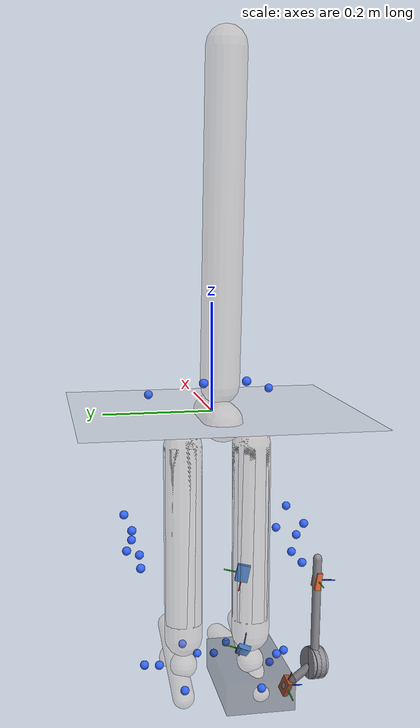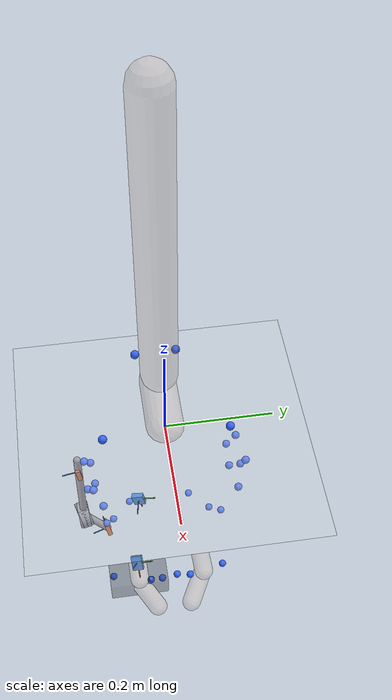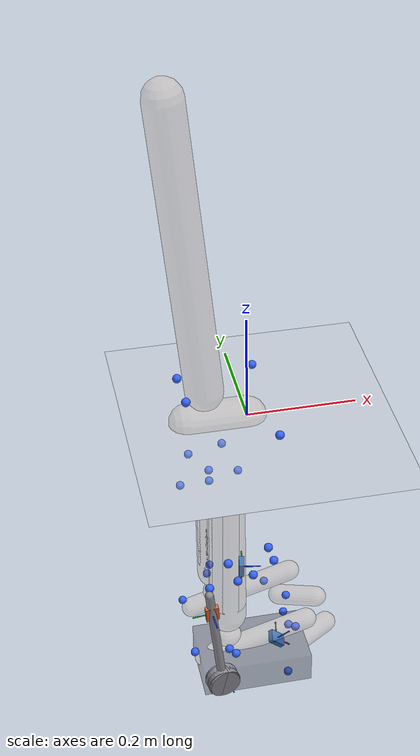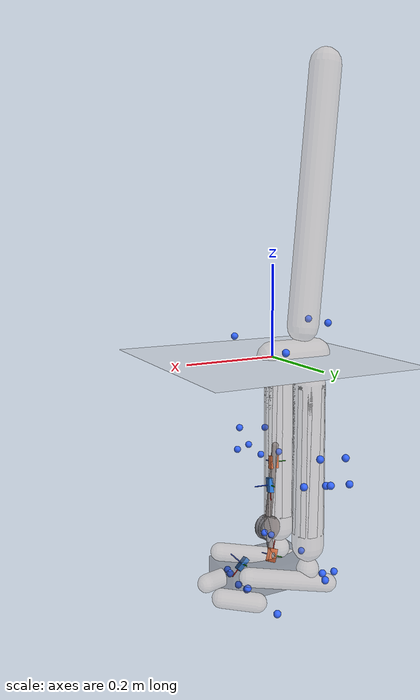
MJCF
<mujoco model="AB07">
  <compiler angle="radian" autolimits="true"/>
  <option timestep="0.005" gravity="0 0 -9.81"><flag contact="disable"/></option>
  <visual><global offwidth="1600" offheight="1200"/>
    <headlight ambient="0.55 0.55 0.55" diffuse="0.6 0.6 0.6"/></visual>
  <default><joint limited="false" damping="0"/><geom contype="0" conaffinity="0"/></default>
  <asset>
    <texture name="grid" type="2d" builtin="checker" rgb1="0.75 0.77 0.8" rgb2="0.85 0.87 0.9" width="512" height="512"/>
    <material name="grid" texture="grid" texrepeat="2 2" texuniform="true"/>
    <material name="skin" rgba="0.85 0.72 0.62 0.28"/>
  </asset>
  <worldbody>
    <light pos="0 0 4" dir="0 0 -1"/>
    <geom name="floor" type="plane" size="0 0 0.05" material="grid"/>
    <body name="pelvis" pos="0 0 0" quat="1 0 0 0">
      <joint name="pelvis_tx" type="slide" axis="1 0 0"/>
      <joint name="pelvis_ty" type="slide" axis="0 0 1"/>
      <joint name="pelvis_tz" type="slide" axis="0 -1 0"/>
      <joint name="pelvis_tilt" type="hinge" axis="0 -1 0"/>
      <joint name="pelvis_list" type="hinge" axis="1 0 0"/>
      <joint name="pelvis_rotation" type="hinge" axis="0 0 1"/>
      <inertial pos="-0.053515062 0 0" mass="9.21415" diaginertia="0.092141474 0.092141474 0.092141474"/>
      <geom type="capsule" fromto="0 0 0 -0.10703012 0 0" size="0.035" material="skin" mass="0"/>
      <site name="m_R_ASIS" pos="0.033664071 -0.11566936 0.033504694" size="0.008" rgba="0.2 0.4 1 1" group="2"/>
      <site name="m_L_ASIS" pos="0.03357233 0.11314141 0.027907197" size="0.008" rgba="0.2 0.4 1 1" group="2"/>
      <site name="m_L_PSIS" pos="-0.11820942 0.036312548 0.07132224" size="0.008" rgba="0.2 0.4 1 1" group="2"/>
      <site name="m_R_PSIS" pos="-0.11560514 -0.03937239 0.072488913" size="0.008" rgba="0.2 0.4 1 1" group="2"/>
      <body name="femur_r" pos="-0.053515062 -0.063203787 -0.050033177" quat="1 0 0 0">
        <joint name="hip_flexion_r" type="hinge" axis="0 -1 0"/>
        <joint name="hip_adduction_r" type="hinge" axis="1 0 0"/>
        <joint name="hip_rotation_r" type="hinge" axis="0 0 1"/>
        <inertial pos="0 0 -0.16663522" mass="7.27728" diaginertia="0.072772752 0.072772752 0.072772752"/>
        <geom type="capsule" fromto="0 0 0 0 0 -0.33327045" size="0.035" material="skin" mass="0"/>
        <site name="m_R_Thigh_Upper" pos="0.060391365 -0.082338532 -0.14067516" size="0.008" rgba="0.2 0.4 1 1" group="2"/>
        <site name="m_R_Thigh_Front" pos="0.07404481 -0.066461354 -0.18715813" size="0.008" rgba="0.2 0.4 1 1" group="2"/>
        <site name="m_R_Thigh_Rear" pos="0.029860654 -0.09457525 -0.18903628" size="0.008" rgba="0.2 0.4 1 1" group="2"/>
        <site name="m_R_Knee_Lat" pos="0.00231249 -0.065433357 -0.40603589" size="0.008" rgba="0.2 0.4 1 1" group="2"/>
        <body name="tibia_r" pos="0 0 0" quat="1 0 0 0">
<geom name="gt_shank_axis_x" type="capsule" size="0.0012" fromto="0.02940 0.00870 -0.25790 0.03022 0.01565 -0.29219" rgba="1 0.1 0.1 1" contype="0" conaffinity="0" mass="0"/>
<geom name="gt_shank_axis_y" type="capsule" size="0.0012" fromto="0.02940 0.00870 -0.25790 0.03591 0.04237 -0.25092" rgba="0.1 0.8 0.1 1" contype="0" conaffinity="0" mass="0"/>
<geom name="gt_shank_axis_z" type="capsule" size="0.0012" fromto="0.02940 0.00870 -0.25790 0.06378 0.00216 -0.25840" rgba="0.1 0.3 1 1" contype="0" conaffinity="0" mass="0"/>
<geom name="exo_shank_axis_x" type="capsule" size="0.0012" fromto="-0.04979 -0.11260 -0.24985 -0.05209 -0.11721 -0.21523" rgba="1 0.1 0.1 1" contype="0" conaffinity="0" mass="0"/>
<geom name="exo_shank_axis_y" type="capsule" size="0.0012" fromto="-0.04979 -0.11260 -0.24985 -0.08462 -0.11483 -0.25246" rgba="0.1 0.8 0.1 1" contype="0" conaffinity="0" mass="0"/>
<geom name="exo_shank_axis_z" type="capsule" size="0.0012" fromto="-0.04979 -0.11260 -0.24985 -0.04723 -0.14722 -0.25429" rgba="0.1 0.3 1 1" contype="0" conaffinity="0" mass="0"/>
<geom name="encoder_shank" type="cylinder" size="0.03 0.012" fromto="-0.03239 -0.12724 -0.41819 -0.03461 -0.10336 -0.41721" rgba="0.55 0.55 0.58 1" contype="0" conaffinity="0" mass="0"/>
<geom name="strut_shank" type="capsule" size="0.008" fromto="-0.03350 -0.11530 -0.41770 -0.05386 -0.11192 -0.20789" rgba="0.55 0.55 0.58 1" contype="0" conaffinity="0" mass="0"/>
          <joint name="knee_r_translation1" type="slide" axis="1 0 0"/>
          <joint name="knee_r_translation2" type="slide" axis="0 0 1"/>
          <joint name="knee_angle_r" type="hinge" axis="0 -1 0"/>
          <inertial pos="0 0 -0.18137732" mass="2.90069" diaginertia="0.029006921 0.029006921 0.029006921"/>
          <geom type="capsule" fromto="0 0 0 0 0 -0.36275464" size="0.035" material="skin" mass="0"/>
          <site name="m_R_Shank_Upper" pos="-0.01556581 -0.095765854 -0.15307496" size="0.008" rgba="0.2 0.4 1 1" group="2"/>
          <site name="m_R_Shank_Front" pos="0.0047970893 -0.079035616 -0.21298879" size="0.008" rgba="0.2 0.4 1 1" group="2"/>
          <site name="m_R_Shank_Rear" pos="-0.0482926 -0.084404025 -0.21579566" size="0.008" rgba="0.2 0.4 1 1" group="2"/>
          <site name="m_R_Ankle_Lat" pos="-0.007256546 -0.049275476 -0.40762694" size="0.008" rgba="0.2 0.4 1 1" group="2"/>
          <site name="gt_shank_imu" type="box" size="0.016 0.012 0.005" pos="0.0294 0.0087 -0.2579" quat="0.70201303 0.13758557 0.69873257 0.0045511802" rgba="0.16 0.47 0.84 1" group="1"/>
          <site name="exo_shank_imu" type="box" size="0.016 0.012 0.005" pos="-0.049788 -0.112596 -0.24985" quat="-0.43116982 -0.53034032 0.53120958 -0.5006477" rgba="0.92 0.41 0.20 1" group="1"/>
          <body name="talus_r" pos="0 0 -0.41774102" quat="1 0 0 0">
            <joint name="ankle_angle_r" type="hinge" axis="-0.10501355 -0.97912632 -0.17402245"/>
            <inertial pos="0 0 0" mass="0.0782385" diaginertia="0.00078238493 0.00078238493 0.00078238493"/>
            <geom type="sphere" size="0.025" material="skin" mass="0"/>
            <body name="calcn_r" pos="-0.047379603 -0.0076942066 -0.040754036" quat="1 0 0 0">
<geom name="gt_foot_axis_x" type="capsule" size="0.0012" fromto="0.14050 0.00040 0.01740 0.16650 0.00303 -0.00588" rgba="1 0.1 0.1 1" contype="0" conaffinity="0" mass="0"/>
<geom name="gt_foot_axis_y" type="capsule" size="0.0012" fromto="0.14050 0.00040 0.01740 0.14618 0.03343 0.02748" rgba="0.1 0.8 0.1 1" contype="0" conaffinity="0" mass="0"/>
<geom name="gt_foot_axis_z" type="capsule" size="0.0012" fromto="0.14050 0.00040 0.01740 0.16323 -0.01087 0.04152" rgba="0.1 0.3 1 1" contype="0" conaffinity="0" mass="0"/>
<geom name="exo_foot_axis_x" type="capsule" size="0.0012" fromto="0.02945 -0.05752 -0.00936 0.01648 -0.06542 0.02217" rgba="1 0.1 0.1 1" contype="0" conaffinity="0" mass="0"/>
<geom name="exo_foot_axis_y" type="capsule" size="0.0012" fromto="0.02945 -0.05752 -0.00936 -0.00198 -0.06311 -0.02369" rgba="0.1 0.8 0.1 1" contype="0" conaffinity="0" mass="0"/>
<geom name="exo_foot_axis_z" type="capsule" size="0.0012" fromto="0.02945 -0.05752 -0.00936 0.03773 -0.09115 -0.01439" rgba="0.1 0.3 1 1" contype="0" conaffinity="0" mass="0"/>
<geom name="encoder_foot" type="cylinder" size="0.03 0.012" fromto="0.01732 -0.11906 0.03979 0.01048 -0.09614 0.04181" rgba="0.55 0.55 0.58 1" contype="0" conaffinity="0" mass="0"/>
<geom name="strut_foot" type="capsule" size="0.008" fromto="0.01390 -0.10760 0.04080 0.02945 -0.05752 -0.00936" rgba="0.55 0.55 0.58 1" contype="0" conaffinity="0" mass="0"/>
<geom name="shoe" type="box" pos="0.09128 -0.00048 -0.00784" size="0.10337 0.06439 0.03000" rgba="0.15 0.15 0.18 0.35" contype="0" conaffinity="0" mass="0"/>
              <joint name="subtalar_angle_r" type="hinge" axis="0.78717961 0.12094949 0.60474746"/>
              <inertial pos="0.099121153 0 0.029736346" mass="0.977981" diaginertia="0.0097798117 0.0097798117 0.0097798117"/>
              <geom type="capsule" fromto="0 0 0 0.19824231 0 0.059472692" size="0.02" material="skin" mass="0"/>
              <site name="m_R_Heel" pos="-0.019088805 0.00081645212 0.014598644" size="0.008" rgba="0.2 0.4 1 1" group="2"/>
              <site name="m_R_Toe_Lat" pos="0.15084954 -0.056171535 -0.017837498" size="0.008" rgba="0.2 0.4 1 1" group="2"/>
              <site name="m_R_Toe_Med" pos="0.17681135 0.052611145 -0.0013907331" size="0.008" rgba="0.2 0.4 1 1" group="2"/>
              <site name="m_R_Toe_Tip" pos="0.18464869 0.026353316 0.015702997" size="0.008" rgba="0.2 0.4 1 1" group="2"/>
              <site name="gt_foot_imu" type="box" size="0.016 0.012 0.005" pos="0.1405 0.0004 0.0174" quat="0.91865114 0.16605812 0.35768895 -0.02373618" rgba="0.16 0.47 0.84 1" group="1"/>
              <site name="exo_foot_imu" type="box" size="0.016 0.012 0.005" pos="0.029452 -0.057516 -0.009358" quat="0.28544955 0.48294344 -0.58191422 0.58877842" rgba="0.92 0.41 0.20 1" group="1"/>
              <body name="toes_r" pos="0.17722862 -0.0010705085 -0.0019824231" quat="1 0 0 0">
                <joint name="mtp_angle_r" type="hinge" axis="-0.5809544 -0.81393611 0"/>
                <inertial pos="0.034295919 0.017346202 0.0059472692" mass="0.169465" diaginertia="0.0016946458 0.0016946458 0.0016946458"/>
                <geom type="capsule" fromto="0 0 0 0.068591838 0.034692404 0.011894538" size="0.02" material="skin" mass="0"/>
              </body>
            </body>
          </body>
        </body>
      </body>
      <body name="femur_l" pos="-0.053515062 0.063203787 -0.050033177" quat="1 0 0 0">
        <joint name="hip_flexion_l" type="hinge" axis="0 -1 0"/>
        <joint name="hip_adduction_l" type="hinge" axis="-1 0 0"/>
        <joint name="hip_rotation_l" type="hinge" axis="0 0 -1"/>
        <inertial pos="0 0 -0.16663522" mass="7.27728" diaginertia="0.072772752 0.072772752 0.072772752"/>
        <geom type="capsule" fromto="0 0 0 0 0 -0.33327045" size="0.035" material="skin" mass="0"/>
        <site name="m_L_Thigh_Upper" pos="0.037526398 0.10335059 -0.13475185" size="0.008" rgba="0.2 0.4 1 1" group="2"/>
        <site name="m_L_Thigh_Front" pos="0.06549258 0.087090839 -0.19284156" size="0.008" rgba="0.2 0.4 1 1" group="2"/>
        <site name="m_L_Thigh_Rear" pos="0.010575248 0.10181906 -0.19471217" size="0.008" rgba="0.2 0.4 1 1" group="2"/>
        <site name="m_L_Knee_Lat" pos="0.0018154116 0.07273436 -0.41281724" size="0.008" rgba="0.2 0.4 1 1" group="2"/>
        <body name="tibia_l" pos="0 0 0" quat="1 0 0 0">
          <joint name="knee_l_translation1" type="slide" axis="1 0 0"/>
          <joint name="knee_l_translation2" type="slide" axis="0 0 1"/>
          <joint name="knee_angle_l" type="hinge" axis="0 -1 0"/>
          <inertial pos="0 0 -0.18137732" mass="2.90069" diaginertia="0.029006921 0.029006921 0.029006921"/>
          <geom type="capsule" fromto="0 0 0 0 0 -0.36275464" size="0.035" material="skin" mass="0"/>
          <site name="m_L_Shank_Upper" pos="-0.029726724 0.095891105 -0.14423464" size="0.008" rgba="0.2 0.4 1 1" group="2"/>
          <site name="m_L_Shank_Front" pos="0.0066113286 0.079017243 -0.20261621" size="0.008" rgba="0.2 0.4 1 1" group="2"/>
          <site name="m_L_Shank_Rear" pos="-0.049726018 0.083138435 -0.20751362" size="0.008" rgba="0.2 0.4 1 1" group="2"/>
          <site name="m_L_Ankle_Lat" pos="-0.0084781213 0.046352266 -0.41108519" size="0.008" rgba="0.2 0.4 1 1" group="2"/>
          <body name="talus_l" pos="0 0 -0.41774102" quat="1 0 0 0">
            <joint name="ankle_angle_l" type="hinge" axis="0.10501355 -0.97912632 0.17402245"/>
            <inertial pos="0 0 0" mass="0.0782385" diaginertia="0.00078238493 0.00078238493 0.00078238493"/>
            <geom type="sphere" size="0.025" material="skin" mass="0"/>
            <body name="calcn_l" pos="-0.047379603 0.0076942066 -0.040754036" quat="1 0 0 0">
              <joint name="subtalar_angle_l" type="hinge" axis="-0.78717961 0.12094949 -0.60474746"/>
              <inertial pos="0.099121153 0 0.029736346" mass="0.977981" diaginertia="0.0097798117 0.0097798117 0.0097798117"/>
              <geom type="capsule" fromto="0 0 0 0.19824231 0 0.059472692" size="0.02" material="skin" mass="0"/>
              <site name="m_L_Heel" pos="-0.017802654 3.7905757e-05 0.021969163" size="0.008" rgba="0.2 0.4 1 1" group="2"/>
              <site name="m_L_Toe_Lat" pos="0.1584127 0.052329296 -0.0075494346" size="0.008" rgba="0.2 0.4 1 1" group="2"/>
              <site name="m_L_Toe_Med" pos="0.17394135 -0.054949531 0.002177226" size="0.008" rgba="0.2 0.4 1 1" group="2"/>
              <site name="m_L_Toe_Tip" pos="0.185787 -0.027203869 0.01907514" size="0.008" rgba="0.2 0.4 1 1" group="2"/>
              <body name="toes_l" pos="0.17722862 0.0010705085 -0.0019824231" quat="1 0 0 0">
                <joint name="mtp_angle_l" type="hinge" axis="0.5809544 -0.81393611 0"/>
                <inertial pos="0.034295919 -0.017346202 0.0059472692" mass="0.169465" diaginertia="0.0016946458 0.0016946458 0.0016946458"/>
                <geom type="capsule" fromto="0 0 0 0.068591838 -0.034692404 0.011894538" size="0.02" material="skin" mass="0"/>
              </body>
            </body>
          </body>
        </body>
      </body>
      <body name="torso" pos="-0.07622301 0 0.061689923" quat="1 0 0 0">
        <joint name="lumbar_extension" type="hinge" axis="0 -1 0"/>
        <joint name="lumbar_bending" type="hinge" axis="1 0 0"/>
        <joint name="lumbar_rotation" type="hinge" axis="0 0 1"/>
        <inertial pos="-0.026326377 0 0.28081469" mass="26.7862" diaginertia="0.267862 0.267862 0.267862"/>
        <geom type="capsule" fromto="0 0 0 -0.052652753 0 0.56162937" size="0.035" material="skin" mass="0"/>
      </body>
    </body>
  </worldbody>
  <sensor>
<accelerometer name="gt_foot_imu_acc" site="gt_foot_imu"/>
<gyro name="gt_foot_imu_gyr" site="gt_foot_imu"/>
<accelerometer name="exo_foot_imu_acc" site="exo_foot_imu"/>
<gyro name="exo_foot_imu_gyr" site="exo_foot_imu"/>
<accelerometer name="gt_shank_imu_acc" site="gt_shank_imu"/>
<gyro name="gt_shank_imu_gyr" site="gt_shank_imu"/>
<accelerometer name="exo_shank_imu_acc" site="exo_shank_imu"/>
<gyro name="exo_shank_imu_gyr" site="exo_shank_imu"/>
</sensor>
</mujoco>
